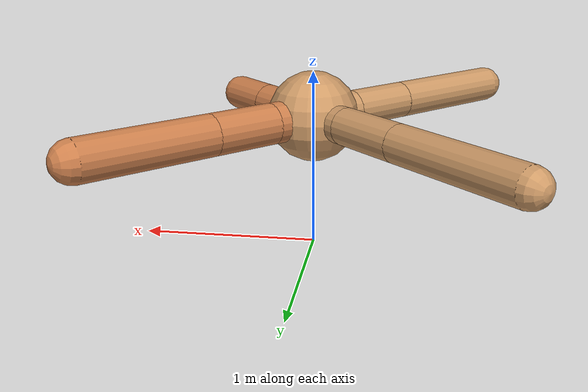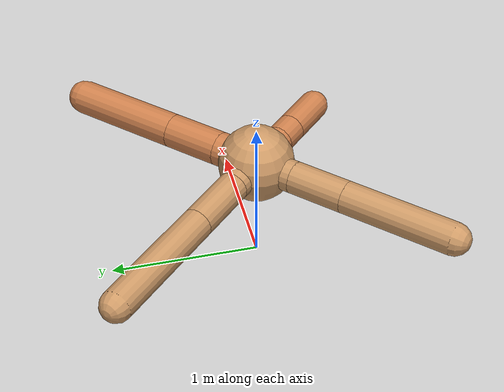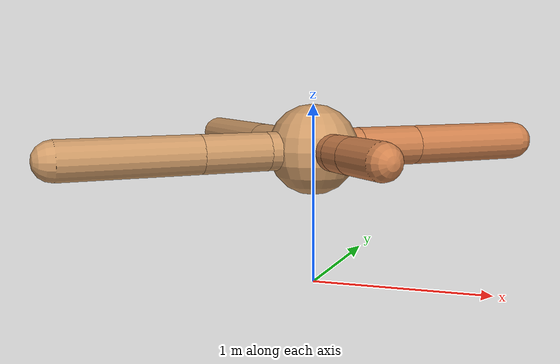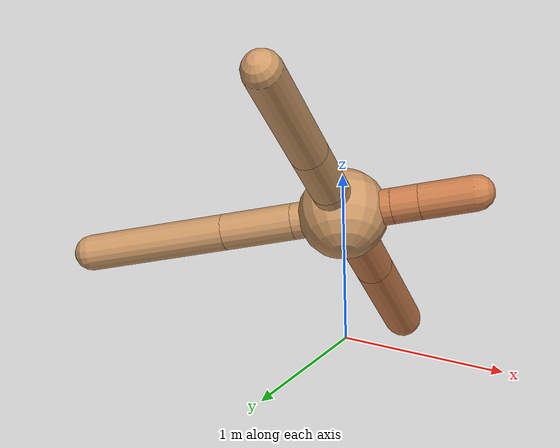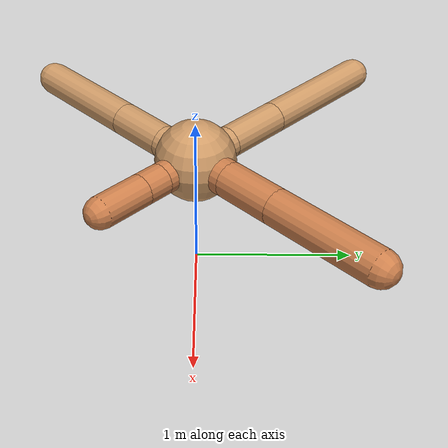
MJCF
<?xml version="1.0" ?>
<mujoco model="ant">

	<compiler angle="degree" coordinate="local" inertiafromgeom="true"/>

	<option integrator="RK4" timestep="0.01"/>

	<custom>

		<numeric data="0.0 0.0 0.55 1.0 0.0 0.0 0.0 0.0 1.0 0.0 -1.0 0.0 -1.0 0.0 1.0" name="init_qpos"/>

	</custom>

	<default>

		<joint armature="1" damping="1" limited="true"/>

		<geom conaffinity="0" condim="3" density="5.0" friction="1.5 0.1 0.1" margin="0.01" rgba="0.8 0.6 0.4 1"/>

	</default>

	<worldbody>

		<body name="torso" pos="0 0 0.75">

			<geom name="torso_geom" pos="0 0 0" size="0.252055860250308" type="sphere"/>

			<!--joint armature="0" damping="0" limited="false" margin="0.01" name="root" pos="0 0 0" type="free"/-->

			<body name="front_left_leg" pos="0 0 0">

				<geom fromto="0 0 0 0.2 0.2 0" name="aux_1_geom" size="0.11338021128909592" type="capsule" rgba=".8 .5 .3 1"/>

				<body name="aux_1" pos="0.2 0.2 0">

					<joint axis="0 0 1" name="hip_1" pos="0.0 0.0 0.0" range="-40 40" type="hinge"/>

					<geom fromto="0 0 0 0.26242103263762767 0.26242103263762767 0" name="left_leg_geom" size="0.11338021128909592" type="capsule" rgba=".8 .5 .3 1"/>

					<body pos="0.26242103263762767 0.26242103263762767 0" name="front_left_foot">

						<joint axis="-1 1 0" name="ankle_1" pos="0.0 0.0 0.0" range="30 100" type="hinge"/>

						<geom fromto="0 0 0 0.5248420652752553 0.5248420652752553 0" name="left_ankle_geom" size="0.11338021128909592" type="capsule" rgba=".8 .5 .3 1"/>

					</body>

				</body>

			</body>

			<body name="front_right_leg" pos="0 0 0">

				<geom fromto="0 0 0 -0.2 0.2 0" name="aux_2_geom" size="0.10260003544001639" type="capsule"/>

				<body name="aux_2" pos="-0.2 0.2 0">

					<joint axis="0 0 1" name="hip_2" pos="0.0 0.0 0.0" range="-40 40" type="hinge"/>

					<geom fromto="0 0 0 -0.2888934822993902 0.2888934822993902 0" name="right_leg_geom" size="0.10260003544001639" type="capsule"/>

					<body pos="-0.2888934822993902 0.2888934822993902 0" name="front_right_foot">

						<joint axis="1 1 0" name="ankle_2" pos="0.0 0.0 0.0" range="-100 -30" type="hinge"/>

						<geom fromto="0 0 0 -0.5777869645987804 0.5777869645987804 0" name="right_ankle_geom" size="0.10260003544001639" type="capsule"/>

					</body>

				</body>

			</body>

			<body name="left_back_leg" pos="0 0 0">

				<geom fromto="0 0 0 -0.2 -0.2 0" name="aux_3_geom" size="0.10545879997587598" type="capsule"/>

				<body name="aux_3" pos="-0.2 -0.2 0">

					<joint axis="0 0 1" name="hip_3" pos="0.0 0.0 0.0" range="-40 40" type="hinge"/>

					<geom fromto="0 0 0 -0.26197946340536565 -0.26197946340536565 0" name="back_leg_geom" size="0.10545879997587598" type="capsule"/>

					<body pos="-0.26197946340536565 -0.26197946340536565 0" name="left_back_foot">

						<joint axis="-1 1 0" name="ankle_3" pos="0.0 0.0 0.0" range="-100 -30" type="hinge"/>

						<geom fromto="0 0 0 -0.5239589268107313 -0.5239589268107313 0" name="third_ankle_geom" size="0.10545879997587598" type="capsule"/>

					</body>

				</body>

			</body>

			<body name="right_back_leg" pos="0 0 0">

				<geom fromto="0 0 0 0.2 -0.2 0" name="aux_4_geom" size="0.0998621506583195" type="capsule" rgba=".8 .5 .3 1"/>

				<body name="aux_4" pos="0.2 -0.2 0">

					<joint axis="0 0 1" name="hip_4" pos="0.0 0.0 0.0" range="-40 40" type="hinge"/>

					<geom fromto="0 0 0 0.1087608380285689 -0.1087608380285689 0" name="rightback_leg_geom" size="0.0998621506583195" type="capsule" rgba=".8 .5 .3 1"/>

					<body pos="0.1087608380285689 -0.1087608380285689 0" name="right_back_foot">

						<joint axis="1 1 0" name="ankle_4" pos="0.0 0.0 0.0" range="30 100" type="hinge"/>

						<geom fromto="0 0 0 0.2175216760571378 -0.2175216760571378 0" name="fourth_ankle_geom" size="0.0998621506583195" type="capsule" rgba=".8 .5 .3 1"/>

					</body>

				</body>

			</body>

		</body>

	</worldbody>

	<actuator>

		<motor ctrllimited="true" ctrlrange="-1.0 1.0" joint="hip_4" gear="150"/>

		<motor ctrllimited="true" ctrlrange="-1.0 1.0" joint="ankle_4" gear="150"/>

		<motor ctrllimited="true" ctrlrange="-1.0 1.0" joint="hip_1" gear="150"/>

		<motor ctrllimited="true" ctrlrange="-1.0 1.0" joint="ankle_1" gear="150"/>

		<motor ctrllimited="true" ctrlrange="-1.0 1.0" joint="hip_2" gear="150"/>

		<motor ctrllimited="true" ctrlrange="-1.0 1.0" joint="ankle_2" gear="150"/>

		<motor ctrllimited="true" ctrlrange="-1.0 1.0" joint="hip_3" gear="150"/>

		<motor ctrllimited="true" ctrlrange="-1.0 1.0" joint="ankle_3" gear="150"/>

	</actuator>

</mujoco>
